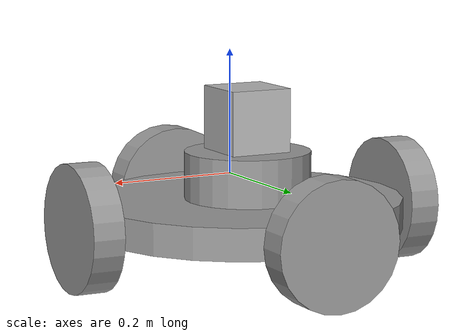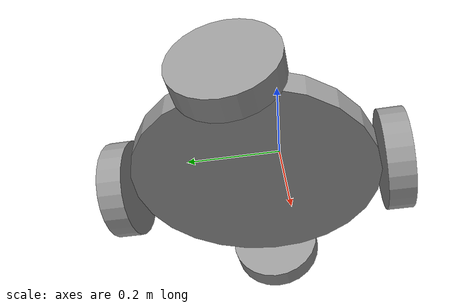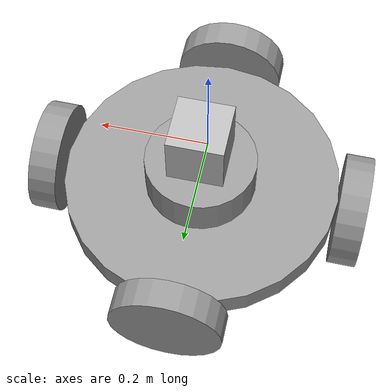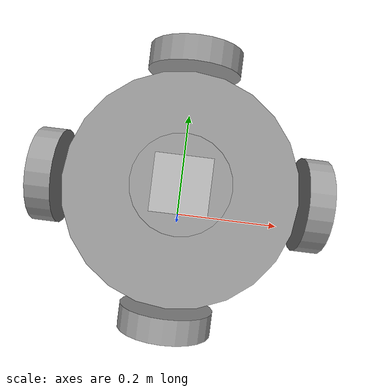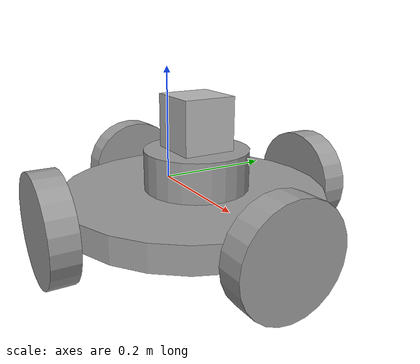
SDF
<?xml version='1.0'?>
<sdf version='1.6'>
  <model name='Platvorm_depth_camera'>
    <model name='Platvorm'>
      <link name='link_0'>
        <inertial>
          <mass>0.00510459</mass>
          <inertia>
            <ixx>1.987e-05</ixx>
            <ixy>0</ixy>
            <ixz>0</ixz>
            <iyy>1.987e-05</iyy>
            <iyz>0</iyz>
            <izz>2.906e-05</izz>
          </inertia>
          <pose frame=''>0 0 0 0 -0 0</pose>
        </inertial>
        <pose frame=''>0 -0.166553 -0.008333 -1.5757 0 0</pose>
        <gravity>1</gravity>
        <self_collide>0</self_collide>
        <kinematic>0</kinematic>
        <enable_wind>0</enable_wind>
        <visual name='visual'>
          <pose frame=''>0 0 0 0 -0 0</pose>
          <geometry>
            <cylinder>
              <radius>0.1</radius>
              <length>0.05</length>
            </cylinder>
          </geometry>
          <material>
            <lighting>1</lighting>
            <script>
              <uri>file://media/materials/scripts/gazebo.material</uri>
              <name>Gazebo/Grey</name>
            </script>
            <shader type='vertex'>
              <normal_map>__default__</normal_map>
            </shader>
            <ambient>0.3 0.3 0.3 1</ambient>
            <diffuse>0.7 0.7 0.7 1</diffuse>
            <specular>0.01 0.01 0.01 1</specular>
            <emissive>0 0 0 1</emissive>
          </material>
          <transparency>0</transparency>
          <cast_shadows>1</cast_shadows>
        </visual>
        <collision name='collision'>
          <laser_retro>0</laser_retro>
          <max_contacts>10</max_contacts>
          <pose frame=''>0 0 0 0 -0 0</pose>
          <geometry>
            <cylinder>
              <radius>0.1</radius>
              <length>0.05</length>
            </cylinder>
          </geometry>
          <surface>
            <friction>
              <ode>
                <mu>1</mu>
                <mu2>1</mu2>
                <fdir1>0 0 0</fdir1>
                <slip1>0</slip1>
                <slip2>0</slip2>
              </ode>
              <torsional>
                <coefficient>1</coefficient>
                <patch_radius>0</patch_radius>
                <surface_radius>0</surface_radius>
                <use_patch_radius>1</use_patch_radius>
                <ode>
                  <slip>0</slip>
                </ode>
              </torsional>
            </friction>
            <bounce>
              <restitution_coefficient>0</restitution_coefficient>
              <threshold>1e+06</threshold>
            </bounce>
            <contact>
              <collide_without_contact>0</collide_without_contact>
              <collide_without_contact_bitmask>1</collide_without_contact_bitmask>
              <collide_bitmask>1</collide_bitmask>
              <ode>
                <soft_cfm>0</soft_cfm>
                <soft_erp>0.2</soft_erp>
                <kp>1e+13</kp>
                <kd>1</kd>
                <max_vel>0.01</max_vel>
                <min_depth>0</min_depth>
              </ode>
              <bullet>
                <split_impulse>1</split_impulse>
                <split_impulse_penetration_threshold>-0.01</split_impulse_penetration_threshold>
                <soft_cfm>0</soft_cfm>
                <soft_erp>0.2</soft_erp>
                <kp>1e+13</kp>
                <kd>1</kd>
              </bullet>
            </contact>
          </surface>
        </collision>
      </link>
      <link name='link_0_clone'>
        <inertial>
          <mass>0.00510459</mass>
          <inertia>
            <ixx>1.987e-05</ixx>
            <ixy>0</ixy>
            <ixz>0</ixz>
            <iyy>1.987e-05</iyy>
            <iyz>0</iyz>
            <izz>2.906e-05</izz>
          </inertia>
          <pose frame=''>0 0 0 0 -0 0</pose>
        </inertial>
        <pose frame=''>0 0.383448 -0.008333 -1.5757 0 0</pose>
        <gravity>1</gravity>
        <self_collide>0</self_collide>
        <kinematic>0</kinematic>
        <enable_wind>0</enable_wind>
        <visual name='visual'>
          <pose frame=''>0 0 0 0 -0 0</pose>
          <geometry>
            <cylinder>
              <radius>0.1</radius>
              <length>0.05</length>
            </cylinder>
          </geometry>
          <material>
            <lighting>1</lighting>
            <script>
              <uri>file://media/materials/scripts/gazebo.material</uri>
              <name>Gazebo/Grey</name>
            </script>
            <shader type='vertex'>
              <normal_map>__default__</normal_map>
            </shader>
            <ambient>0.3 0.3 0.3 1</ambient>
            <diffuse>0.7 0.7 0.7 1</diffuse>
            <specular>0.01 0.01 0.01 1</specular>
            <emissive>0 0 0 1</emissive>
          </material>
          <transparency>0</transparency>
          <cast_shadows>1</cast_shadows>
        </visual>
        <collision name='collision'>
          <laser_retro>0</laser_retro>
          <max_contacts>10</max_contacts>
          <pose frame=''>0 0 0 0 -0 0</pose>
          <geometry>
            <cylinder>
              <radius>0.1</radius>
              <length>0.05</length>
            </cylinder>
          </geometry>
          <surface>
            <friction>
              <ode>
                <mu>1</mu>
                <mu2>1</mu2>
                <fdir1>0 0 0</fdir1>
                <slip1>0</slip1>
                <slip2>0</slip2>
              </ode>
              <torsional>
                <coefficient>1</coefficient>
                <patch_radius>0</patch_radius>
                <surface_radius>0</surface_radius>
                <use_patch_radius>1</use_patch_radius>
                <ode>
                  <slip>0</slip>
                </ode>
              </torsional>
            </friction>
            <bounce>
              <restitution_coefficient>0</restitution_coefficient>
              <threshold>1e+06</threshold>
            </bounce>
            <contact>
              <collide_without_contact>0</collide_without_contact>
              <collide_without_contact_bitmask>1</collide_without_contact_bitmask>
              <collide_bitmask>1</collide_bitmask>
              <ode>
                <soft_cfm>0</soft_cfm>
                <soft_erp>0.2</soft_erp>
                <kp>1e+13</kp>
                <kd>1</kd>
                <max_vel>0.01</max_vel>
                <min_depth>0</min_depth>
              </ode>
              <bullet>
                <split_impulse>1</split_impulse>
                <split_impulse_penetration_threshold>-0.01</split_impulse_penetration_threshold>
                <soft_cfm>0</soft_cfm>
                <soft_erp>0.2</soft_erp>
                <kp>1e+13</kp>
                <kd>1</kd>
              </bullet>
            </contact>
          </surface>
        </collision>
      </link>
      <link name='link_0_clone_0'>
        <inertial>
          <mass>0.00510459</mass>
          <inertia>
            <ixx>1.987e-05</ixx>
            <ixy>0</ixy>
            <ixz>0</ixz>
            <iyy>1.987e-05</iyy>
            <iyz>0</iyz>
            <izz>2.906e-05</izz>
          </inertia>
          <pose frame=''>0 0 0 0 -0 0</pose>
        </inertial>
        <pose frame=''>0.275 0.108447 -0.008333 -1.5757 -0 1.57</pose>
        <gravity>1</gravity>
        <self_collide>0</self_collide>
        <kinematic>0</kinematic>
        <enable_wind>0</enable_wind>
        <visual name='visual'>
          <pose frame=''>0 0 0 0 -0 0</pose>
          <geometry>
            <cylinder>
              <radius>0.1</radius>
              <length>0.05</length>
            </cylinder>
          </geometry>
          <material>
            <lighting>1</lighting>
            <script>
              <uri>file://media/materials/scripts/gazebo.material</uri>
              <name>Gazebo/Grey</name>
            </script>
            <shader type='vertex'>
              <normal_map>__default__</normal_map>
            </shader>
            <ambient>0.3 0.3 0.3 1</ambient>
            <diffuse>0.7 0.7 0.7 1</diffuse>
            <specular>0.01 0.01 0.01 1</specular>
            <emissive>0 0 0 1</emissive>
          </material>
          <transparency>0</transparency>
          <cast_shadows>1</cast_shadows>
        </visual>
        <collision name='collision'>
          <laser_retro>0</laser_retro>
          <max_contacts>10</max_contacts>
          <pose frame=''>0 0 0 0 -0 0</pose>
          <geometry>
            <cylinder>
              <radius>0.1</radius>
              <length>0.05</length>
            </cylinder>
          </geometry>
          <surface>
            <friction>
              <ode>
                <mu>1</mu>
                <mu2>1</mu2>
                <fdir1>0 0 0</fdir1>
                <slip1>0</slip1>
                <slip2>0</slip2>
              </ode>
              <torsional>
                <coefficient>1</coefficient>
                <patch_radius>0</patch_radius>
                <surface_radius>0</surface_radius>
                <use_patch_radius>1</use_patch_radius>
                <ode>
                  <slip>0</slip>
                </ode>
              </torsional>
            </friction>
            <bounce>
              <restitution_coefficient>0</restitution_coefficient>
              <threshold>1e+06</threshold>
            </bounce>
            <contact>
              <collide_without_contact>0</collide_without_contact>
              <collide_without_contact_bitmask>1</collide_without_contact_bitmask>
              <collide_bitmask>1</collide_bitmask>
              <ode>
                <soft_cfm>0</soft_cfm>
                <soft_erp>0.2</soft_erp>
                <kp>1e+13</kp>
                <kd>1</kd>
                <max_vel>0.01</max_vel>
                <min_depth>0</min_depth>
              </ode>
              <bullet>
                <split_impulse>1</split_impulse>
                <split_impulse_penetration_threshold>-0.01</split_impulse_penetration_threshold>
                <soft_cfm>0</soft_cfm>
                <soft_erp>0.2</soft_erp>
                <kp>1e+13</kp>
                <kd>1</kd>
              </bullet>
            </contact>
          </surface>
        </collision>
      </link>
      <link name='link_0_clone_0_clone'>
        <inertial>
          <mass>0.00510459</mass>
          <inertia>
            <ixx>1.987e-05</ixx>
            <ixy>0</ixy>
            <ixz>0</ixz>
            <iyy>1.987e-05</iyy>
            <iyz>0</iyz>
            <izz>2.906e-05</izz>
          </inertia>
          <pose frame=''>0 0 0 0 -0 0</pose>
        </inertial>
        <pose frame=''>-0.275 0.108447 -0.008333 -1.5757 -0 1.57</pose>
        <gravity>1</gravity>
        <self_collide>0</self_collide>
        <kinematic>0</kinematic>
        <enable_wind>0</enable_wind>
        <visual name='visual'>
          <pose frame=''>0 0 0 0 -0 0</pose>
          <geometry>
            <cylinder>
              <radius>0.1</radius>
              <length>0.05</length>
            </cylinder>
          </geometry>
          <material>
            <lighting>1</lighting>
            <script>
              <uri>file://media/materials/scripts/gazebo.material</uri>
              <name>Gazebo/Grey</name>
            </script>
            <shader type='vertex'>
              <normal_map>__default__</normal_map>
            </shader>
            <ambient>0.3 0.3 0.3 1</ambient>
            <diffuse>0.7 0.7 0.7 1</diffuse>
            <specular>0.01 0.01 0.01 1</specular>
            <emissive>0 0 0 1</emissive>
          </material>
          <transparency>0</transparency>
          <cast_shadows>1</cast_shadows>
        </visual>
        <collision name='collision'>
          <laser_retro>0</laser_retro>
          <max_contacts>10</max_contacts>
          <pose frame=''>0 0 0 0 -0 0</pose>
          <geometry>
            <cylinder>
              <radius>0.1</radius>
              <length>0.05</length>
            </cylinder>
          </geometry>
          <surface>
            <friction>
              <ode>
                <mu>1</mu>
                <mu2>1</mu2>
                <fdir1>0 0 0</fdir1>
                <slip1>0</slip1>
                <slip2>0</slip2>
              </ode>
              <torsional>
                <coefficient>1</coefficient>
                <patch_radius>0</patch_radius>
                <surface_radius>0</surface_radius>
                <use_patch_radius>1</use_patch_radius>
                <ode>
                  <slip>0</slip>
                </ode>
              </torsional>
            </friction>
            <bounce>
              <restitution_coefficient>0</restitution_coefficient>
              <threshold>1e+06</threshold>
            </bounce>
            <contact>
              <collide_without_contact>0</collide_without_contact>
              <collide_without_contact_bitmask>1</collide_without_contact_bitmask>
              <collide_bitmask>1</collide_bitmask>
              <ode>
                <soft_cfm>0</soft_cfm>
                <soft_erp>0.2</soft_erp>
                <kp>1e+13</kp>
                <kd>1</kd>
                <max_vel>0.01</max_vel>
                <min_depth>0</min_depth>
              </ode>
              <bullet>
                <split_impulse>1</split_impulse>
                <split_impulse_penetration_threshold>-0.01</split_impulse_penetration_threshold>
                <soft_cfm>0</soft_cfm>
                <soft_erp>0.2</soft_erp>
                <kp>1e+13</kp>
                <kd>1</kd>
              </bullet>
            </contact>
          </surface>
        </collision>
      </link>
      <link name='link_3'>
        <inertial>
          <mass>0.0302723</mass>
          <inertia>
            <ixx>0.00065661</ixx>
            <ixy>0</ixy>
            <ixz>0</ixz>
            <iyy>0.00065661</iyy>
            <iyz>0</iyz>
            <izz>0.00127232</izz>
          </inertia>
          <pose frame=''>0 0 0 0 -0 0</pose>
        </inertial>
        <pose frame=''>0 0.108448 -0.008333 0 -0 0</pose>
        <gravity>1</gravity>
        <self_collide>0</self_collide>
        <kinematic>0</kinematic>
        <enable_wind>0</enable_wind>
        <visual name='visual'>
          <pose frame=''>0 0 0 0 -0 0</pose>
          <geometry>
            <cylinder>
              <radius>0.25</radius>
              <length>0.05</length>
            </cylinder>
          </geometry>
          <material>
            <lighting>1</lighting>
            <script>
              <uri>file://media/materials/scripts/gazebo.material</uri>
              <name>Gazebo/Grey</name>
            </script>
            <shader type='vertex'>
              <normal_map>__default__</normal_map>
            </shader>
            <ambient>0.3 0.3 0.3 1</ambient>
            <diffuse>0.7 0.7 0.7 1</diffuse>
            <specular>0.01 0.01 0.01 1</specular>
            <emissive>0 0 0 1</emissive>
          </material>
          <transparency>0</transparency>
          <cast_shadows>1</cast_shadows>
        </visual>
        <collision name='collision'>
          <laser_retro>0</laser_retro>
          <max_contacts>10</max_contacts>
          <pose frame=''>0 0 0 0 -0 0</pose>
          <geometry>
            <cylinder>
              <radius>0.25</radius>
              <length>0.05</length>
            </cylinder>
          </geometry>
          <surface>
            <friction>
              <ode>
                <mu>1</mu>
                <mu2>1</mu2>
                <fdir1>0 0 0</fdir1>
                <slip1>0</slip1>
                <slip2>0</slip2>
              </ode>
              <torsional>
                <coefficient>1</coefficient>
                <patch_radius>0</patch_radius>
                <surface_radius>0</surface_radius>
                <use_patch_radius>1</use_patch_radius>
                <ode>
                  <slip>0</slip>
                </ode>
              </torsional>
            </friction>
            <bounce>
              <restitution_coefficient>0</restitution_coefficient>
              <threshold>1e+06</threshold>
            </bounce>
            <contact>
              <collide_without_contact>0</collide_without_contact>
              <collide_without_contact_bitmask>1</collide_without_contact_bitmask>
              <collide_bitmask>1</collide_bitmask>
              <ode>
                <soft_cfm>0</soft_cfm>
                <soft_erp>0.2</soft_erp>
                <kp>1e+13</kp>
                <kd>1</kd>
                <max_vel>0.01</max_vel>
                <min_depth>0</min_depth>
              </ode>
              <bullet>
                <split_impulse>1</split_impulse>
                <split_impulse_penetration_threshold>-0.01</split_impulse_penetration_threshold>
                <soft_cfm>0</soft_cfm>
                <soft_erp>0.2</soft_erp>
                <kp>1e+13</kp>
                <kd>1</kd>
              </bullet>
            </contact>
          </surface>
        </collision>
      </link>
      <link name='link_5'>
        <inertial>
          <mass>0.00271088</mass>
          <inertia>
            <ixx>6.86e-06</ixx>
            <ixy>0</ixy>
            <ixz>0</ixz>
            <iyy>6.86e-06</iyy>
            <iyz>0</iyz>
            <izz>8.87e-06</izz>
          </inertia>
          <pose frame=''>0 0 0 0 -0 0</pose>
        </inertial>
        <pose frame=''>0 0.118585 0.041667 0 -0 0</pose>
        <gravity>1</gravity>
        <self_collide>0</self_collide>
        <kinematic>0</kinematic>
        <enable_wind>0</enable_wind>
        <visual name='visual'>
          <pose frame=''>0 0 0 0 -0 0</pose>
          <geometry>
            <cylinder>
              <radius>0.1</radius>
              <length>0.1</length>
            </cylinder>
          </geometry>
          <material>
            <lighting>1</lighting>
            <script>
              <uri>file://media/materials/scripts/gazebo.material</uri>
              <name>Gazebo/Grey</name>
            </script>
            <shader type='vertex'>
              <normal_map>__default__</normal_map>
            </shader>
            <ambient>0.3 0.3 0.3 1</ambient>
            <diffuse>0.7 0.7 0.7 1</diffuse>
            <specular>0.01 0.01 0.01 1</specular>
            <emissive>0 0 0 1</emissive>
          </material>
          <transparency>0</transparency>
          <cast_shadows>1</cast_shadows>
        </visual>
        <collision name='collision'>
          <laser_retro>0</laser_retro>
          <max_contacts>10</max_contacts>
          <pose frame=''>0 0 0 0 -0 0</pose>
          <geometry>
            <cylinder>
              <radius>0.1</radius>
              <length>0.1</length>
            </cylinder>
          </geometry>
          <surface>
            <friction>
              <ode>
                <mu>1</mu>
                <mu2>1</mu2>
                <fdir1>0 0 0</fdir1>
                <slip1>0</slip1>
                <slip2>0</slip2>
              </ode>
              <torsional>
                <coefficient>1</coefficient>
                <patch_radius>0</patch_radius>
                <surface_radius>0</surface_radius>
                <use_patch_radius>1</use_patch_radius>
                <ode>
                  <slip>0</slip>
                </ode>
              </torsional>
            </friction>
            <bounce>
              <restitution_coefficient>0</restitution_coefficient>
              <threshold>1e+06</threshold>
            </bounce>
            <contact>
              <collide_without_contact>0</collide_without_contact>
              <collide_without_contact_bitmask>1</collide_without_contact_bitmask>
              <collide_bitmask>1</collide_bitmask>
              <ode>
                <soft_cfm>0</soft_cfm>
                <soft_erp>0.2</soft_erp>
                <kp>1e+13</kp>
                <kd>1</kd>
                <max_vel>0.01</max_vel>
                <min_depth>0</min_depth>
              </ode>
              <bullet>
                <split_impulse>1</split_impulse>
                <split_impulse_penetration_threshold>-0.01</split_impulse_penetration_threshold>
                <soft_cfm>0</soft_cfm>
                <soft_erp>0.2</soft_erp>
                <kp>1e+13</kp>
                <kd>1</kd>
              </bullet>
            </contact>
          </surface>
        </collision>
      </link>
      <joint name='link_3_JOINT_0' type='revolute'>
        <parent>link_3</parent>
        <child>link_0</child>
        <pose frame=''>0 0 0 0 -0 0</pose>
        <axis>
          <xyz>0 0 1</xyz>
          <use_parent_model_frame>0</use_parent_model_frame>
          <limit>
            <lower>-1.79769e+308</lower>
            <upper>1.79769e+308</upper>
            <effort>-1</effort>
            <velocity>-1</velocity>
          </limit>
          <dynamics>
            <spring_reference>0</spring_reference>
            <spring_stiffness>0</spring_stiffness>
            <damping>0</damping>
          </dynamics>
        </axis>
        <physics>
          <ode>
            <limit>
              <cfm>0</cfm>
              <erp>0.2</erp>
            </limit>
            <suspension>
              <cfm>0</cfm>
              <erp>0.2</erp>
            </suspension>
          </ode>
        </physics>
      </joint>
      <joint name='link_3_JOINT_1' type='revolute'>
        <parent>link_3</parent>
        <child>link_0_clone</child>
        <pose frame=''>0 0 0 0 -0 0</pose>
        <axis>
          <xyz>0 0 1</xyz>
          <use_parent_model_frame>0</use_parent_model_frame>
          <limit>
            <lower>-1.79769e+308</lower>
            <upper>1.79769e+308</upper>
            <effort>-1</effort>
            <velocity>-1</velocity>
          </limit>
          <dynamics>
            <spring_reference>0</spring_reference>
            <spring_stiffness>0</spring_stiffness>
            <damping>0</damping>
          </dynamics>
        </axis>
        <physics>
          <ode>
            <limit>
              <cfm>0</cfm>
              <erp>0.2</erp>
            </limit>
            <suspension>
              <cfm>0</cfm>
              <erp>0.2</erp>
            </suspension>
          </ode>
        </physics>
      </joint>
      <joint name='link_3_JOINT_2' type='revolute'>
        <parent>link_3</parent>
        <child>link_0_clone_0_clone</child>
        <pose frame=''>0 0 0 0 -0 0</pose>
        <axis>
          <xyz>0 0 1</xyz>
          <use_parent_model_frame>0</use_parent_model_frame>
          <limit>
            <lower>-1.79769e+308</lower>
            <upper>1.79769e+308</upper>
            <effort>-1</effort>
            <velocity>-1</velocity>
          </limit>
          <dynamics>
            <spring_reference>0</spring_reference>
            <spring_stiffness>0</spring_stiffness>
            <damping>0</damping>
          </dynamics>
        </axis>
        <physics>
          <ode>
            <limit>
              <cfm>0</cfm>
              <erp>0.2</erp>
            </limit>
            <suspension>
              <cfm>0</cfm>
              <erp>0.2</erp>
            </suspension>
          </ode>
        </physics>
      </joint>
      <joint name='link_3_JOINT_3' type='revolute'>
        <parent>link_3</parent>
        <child>link_0_clone_0</child>
        <pose frame=''>0 0 0 0 -0 0</pose>
        <axis>
          <xyz>0 0 1</xyz>
          <use_parent_model_frame>0</use_parent_model_frame>
          <limit>
            <lower>-1.79769e+308</lower>
            <upper>1.79769e+308</upper>
            <effort>-1</effort>
            <velocity>-1</velocity>
          </limit>
          <dynamics>
            <spring_reference>0</spring_reference>
            <spring_stiffness>0</spring_stiffness>
            <damping>0</damping>
          </dynamics>
        </axis>
        <physics>
          <ode>
            <limit>
              <cfm>0</cfm>
              <erp>0.2</erp>
            </limit>
            <suspension>
              <cfm>0</cfm>
              <erp>0.2</erp>
            </suspension>
          </ode>
        </physics>
      </joint>
      <joint name='link_3_JOINT_4' type='fixed'>
        <parent>link_3</parent>
        <child>link_5</child>
        <pose frame=''>0 0 0 0 -0 0</pose>
        <physics>
          <ode>
            <limit>
              <cfm>0</cfm>
              <erp>0.2</erp>
            </limit>
            <suspension>
              <cfm>0</cfm>
              <erp>0.2</erp>
            </suspension>
          </ode>
        </physics>
      </joint>
      <static>0</static>
      <allow_auto_disable>1</allow_auto_disable>
      <pose frame=''>-0.00027 -0.058731 -0.046145 0 -0 0</pose>
    </model>
    <model name='depth_camera'>
      <link name='link'>
        <pose frame=''>0 0 0.05 0 -0 0</pose>
        <inertial>
          <mass>0.1</mass>
          <inertia>
            <ixx>0.000166667</ixx>
            <iyy>0.000166667</iyy>
            <izz>0.000166667</izz>
            <ixy>0</ixy>
            <ixz>0</ixz>
            <iyz>0</iyz>
          </inertia>
        </inertial>
        <collision name='collision'>
          <geometry>
            <box>
              <size>0.1 0.1 0.1</size>
            </box>
          </geometry>
        </collision>
        <visual name='visual'>
          <geometry>
            <box>
              <size>0.1 0.1 0.1</size>
            </box>
          </geometry>
        </visual>
        <sensor name='camera' type='depth'>
          <camera name='__default__'>
            <horizontal_fov>1.047</horizontal_fov>
            <image>
              <width>320</width>
              <height>240</height>
            </image>
            <clip>
              <near>0.1</near>
              <far>100</far>
            </clip>
          </camera>
          <always_on>1</always_on>
          <update_rate>30</update_rate>
          <visualize>1</visualize>
        </sensor>
      </link>
      <pose frame=''>0.00027 0.058731 0.046145 0 -0 0</pose>
    </model>
    <joint name='link_5_JOINT_0' type='fixed'>
      <parent>Platvorm::link_5</parent>
      <child>depth_camera::link</child>
      <pose frame=''>0 0 0 0 -0 0</pose>
      <physics>
        <ode>
          <limit>
            <cfm>0</cfm>
            <erp>0.2</erp>
          </limit>
          <suspension>
            <cfm>0</cfm>
            <erp>0.2</erp>
          </suspension>
        </ode>
      </physics>
    </joint>
    <static>0</static>
    <allow_auto_disable>1</allow_auto_disable>
    <plugin name='follower' filename='libFollowerPlugin.so'/>
  </model>
</sdf>
